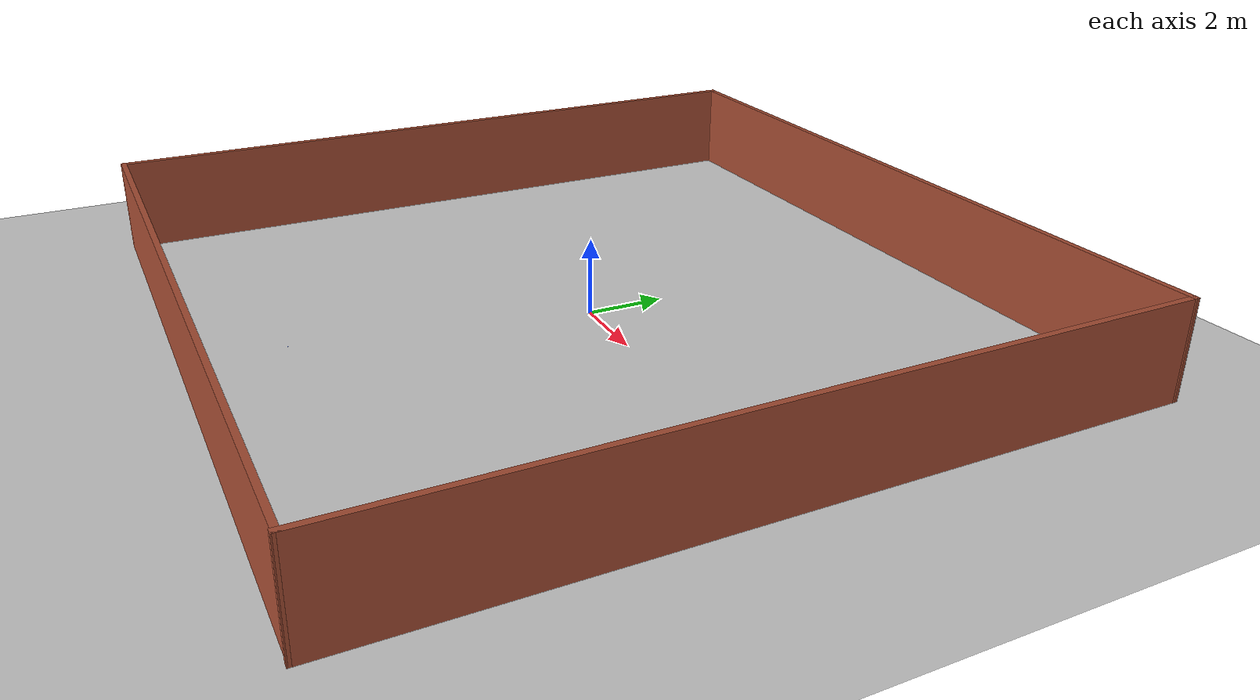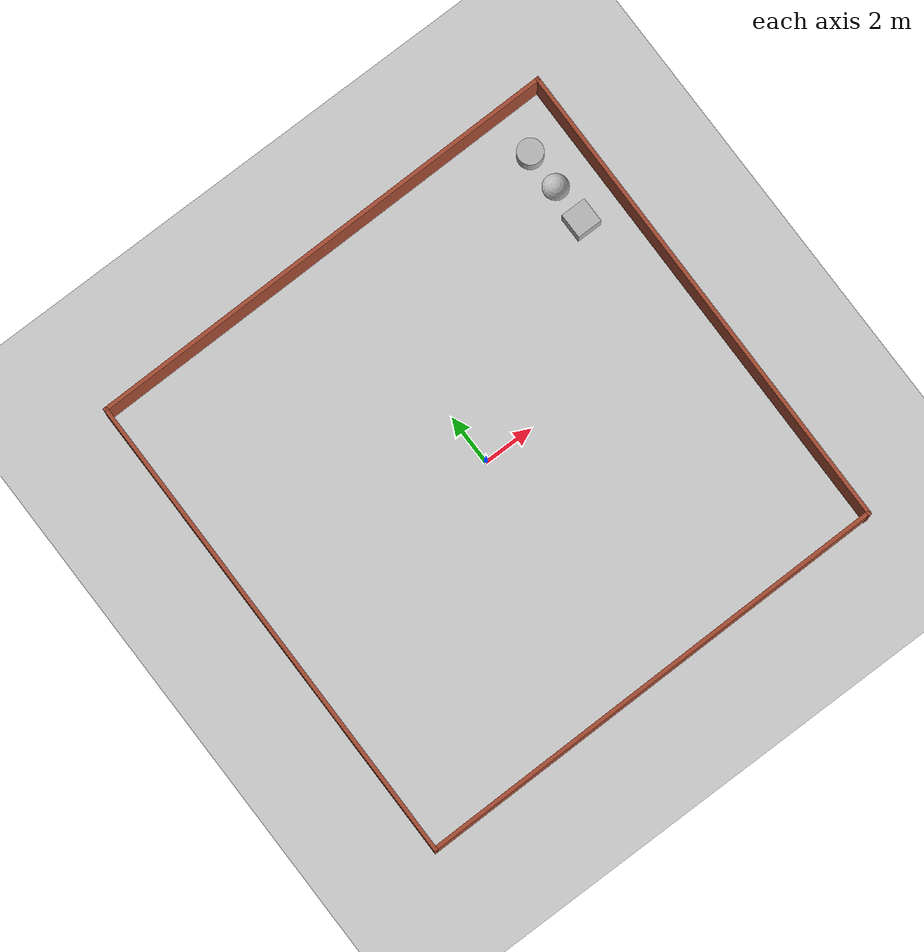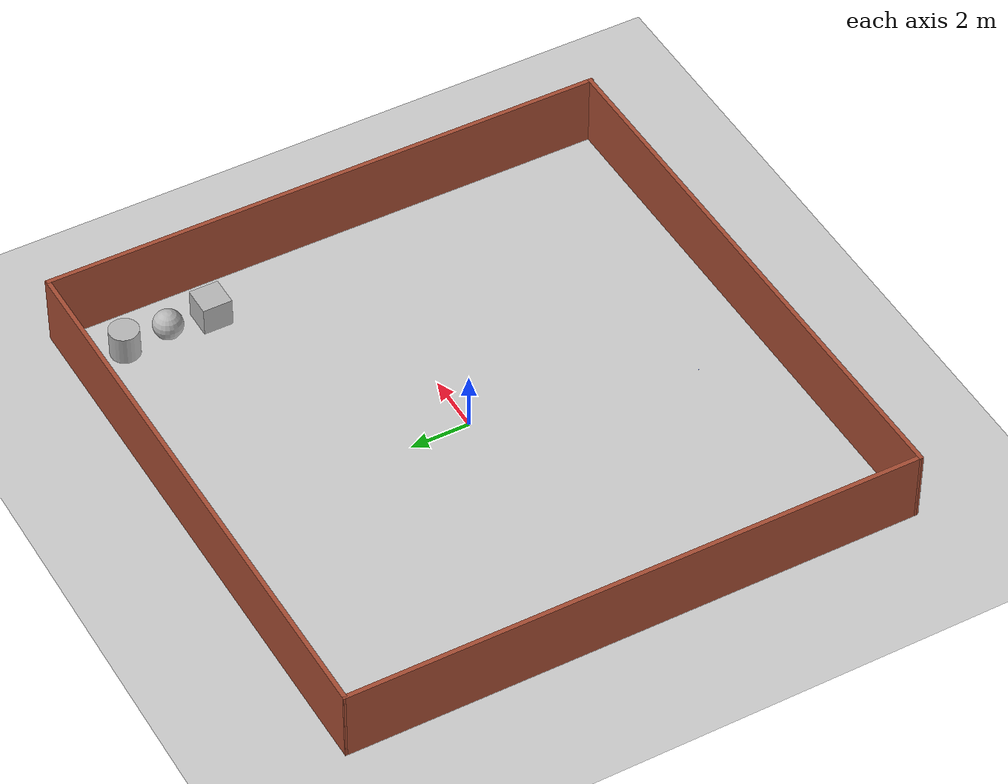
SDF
<sdf version="1.7">
 <world name="default">
  <light name="sun" type="directional">
   <pose>0 0 10 0 -0 0</pose>
   <diffuse>0.8 0.8 0.8 1</diffuse>
   <specular>0.2 0.2 0.2 1</specular>
   <attenuation>
    <range>1000</range>
    <constant>0.9</constant>
    <linear>0.01</linear>
    <quadratic>0.001</quadratic>
   </attenuation>
   <direction>-0.5 0.1 -0.9</direction>
   <spot><inner_angle>0</inner_angle><outer_angle>0</outer_angle><falloff>0</falloff></spot>
  </light>
  <model name="ground_plane">
   <static>1</static>
   <link name="link">
    <collision name="collision">
     <geometry><plane><normal>0 0 1</normal><size>100 100</size></plane></geometry>
     <surface>
      <contact><collide_bitmask>65535</collide_bitmask></contact>
      <friction><ode><mu>100</mu><mu2>50</mu2></ode></friction>
     </surface>
    </collision>
    <visual name="visual">
     <cast_shadows>0</cast_shadows>
     <geometry><plane><normal>0 0 1</normal><size>100 100</size></plane></geometry>
     <material>
      <script><uri>file://media/materials/scripts/gazebo.material</uri><name>Gazebo/Grey</name></script>
     </material>
    </visual>
   </link>
  </model>
  <gravity>0 0 -9.8</gravity>
  <magnetic_field>6e-06 2.3e-05 -4.2e-05</magnetic_field>
  <atmosphere type="adiabatic"/>
  <physics type="ode">
   <max_step_size>0.001</max_step_size>
   <real_time_factor>1</real_time_factor>
   <real_time_update_rate>1000</real_time_update_rate>
  </physics>
  <scene><ambient>0.4 0.4 0.4 1</ambient><background>0.7 0.7 0.7 1</background><shadows>1</shadows></scene>
  <spherical_coordinates>
   <surface_model>EARTH_WGS84</surface_model>
   <latitude_deg>0</latitude_deg>
   <longitude_deg>0</longitude_deg>
   <elevation>0</elevation>
   <heading_deg>0</heading_deg>
  </spherical_coordinates>
  <model name="four_wall">
   <pose>-0.112949 -0.176475 0 0 -0 0</pose>
   <link name="Wall_3">
    <collision name="Wall_3_Collision">
     <geometry><box><size>19.3912 0.15 2.5</size></box></geometry>
     <pose>0 0 1.25 0 -0 0</pose>
    </collision>
    <visual name="Wall_3_Visual">
     <pose>0 0 1.25 0 -0 0</pose>
     <geometry><box><size>19.3912 0.15 2.5</size></box></geometry>
     <material>
      <script><uri>file://media/materials/scripts/gazebo.material</uri><name>Gazebo/Bricks</name></script>
      <ambient>0.921569 0.807843 0.615686 1</ambient>
     </material>
     <meta><layer>0</layer></meta>
    </visual>
    <pose>-9.58582 -0.092522 0 0 -0 -1.5756</pose>
   </link>
   <link name="Wall_4">
    <collision name="Wall_4_Collision">
     <geometry><box><size>19.3225 0.15 2.5</size></box></geometry>
     <pose>0 0 1.25 0 -0 0</pose>
    </collision>
    <visual name="Wall_4_Visual">
     <pose>0 0 1.25 0 -0 0</pose>
     <geometry><box><size>19.3225 0.15 2.5</size></box></geometry>
     <material>
      <script><uri>file://media/materials/scripts/gazebo.material</uri><name>Gazebo/Bricks</name></script>
      <ambient>0.921569 0.807843 0.615686 1</ambient>
     </material>
     <meta><layer>0</layer></meta>
    </visual>
    <pose>-0.046262 -9.62051 0 0 -0 0.009652</pose>
   </link>
   <link name="Wall_5">
    <collision name="Wall_5_Collision">
     <geometry><box><size>19.3912 0.15 2.5</size></box></geometry>
     <pose>0 0 1.25 0 -0 0</pose>
    </collision>
    <visual name="Wall_5_Visual">
     <pose>0 0 1.25 0 -0 0</pose>
     <geometry><box><size>19.3912 0.15 2.5</size></box></geometry>
     <material>
      <script><uri>file://media/materials/scripts/gazebo.material</uri><name>Gazebo/Bricks</name></script>
      <ambient>1 1 1 1</ambient>
     </material>
     <meta><layer>0</layer></meta>
    </visual>
    <pose>9.58582 0.069392 0 0 -0 1.56599</pose>
   </link>
   <link name="Wall_6">
    <collision name="Wall_6_Collision">
     <geometry><box><size>19.3225 0.15 2.5</size></box></geometry>
     <pose>0 0 1.25 0 -0 0</pose>
    </collision>
    <visual name="Wall_6_Visual">
     <pose>0 0 1.25 0 -0 0</pose>
     <geometry><box><size>19.3225 0.15 2.5</size></box></geometry>
     <material>
      <script><uri>file://media/materials/scripts/gazebo.material</uri><name>Gazebo/Bricks</name></script>
      <ambient>1 1 1 1</ambient>
     </material>
     <meta><layer>0</layer></meta>
    </visual>
    <pose>0.046261 9.62051 0 0 -0 -3.13194</pose>
   </link>
   <static>1</static>
  </model>
  <model name="textured_shapes">
   <pose>7.90473 6.32976 0.5 0 -0 0</pose>
   <link name="box">
    <pose>0 -1.5 0 0 -0 0</pose>
    <collision name="collision"><geometry><box><size>1 1 1</size></box></geometry></collision>
    <visual name="visual">
     <geometry><box><size>1 1 1</size></box></geometry>
     <material>
      <script>
       <uri>model://textured_shapes/materials/scripts</uri>
       <uri>model://textured_shapes/materials/textures</uri>
       <name>TexturedShape/Squares</name>
      </script>
     </material>
    </visual>
    <inertial>
     <inertia><ixx>1</ixx><ixy>0</ixy><ixz>0</ixz><iyy>1</iyy><iyz>0</iyz><izz>1</izz></inertia>
     <mass>1</mass>
    </inertial>
   </link>
   <link name="sphere">
    <collision name="collision"><geometry><sphere><radius>0.5</radius></sphere></geometry></collision>
    <visual name="visual">
     <geometry><sphere><radius>0.5</radius></sphere></geometry>
     <material>
      <script>
       <uri>model://textured_shapes/materials/scripts</uri>
       <uri>model://textured_shapes/materials/textures</uri>
       <name>TexturedShape/Squares</name>
      </script>
     </material>
    </visual>
    <inertial>
     <inertia><ixx>1</ixx><ixy>0</ixy><ixz>0</ixz><iyy>1</iyy><iyz>0</iyz><izz>1</izz></inertia>
     <mass>1</mass>
    </inertial>
   </link>
   <link name="cylinder">
    <pose>0 1.5 0 0 -0 0</pose>
    <collision name="collision">
     <geometry><cylinder><radius>0.5</radius><length>1</length></cylinder></geometry>
    </collision>
    <visual name="visual">
     <geometry><cylinder><radius>0.5</radius><length>1</length></cylinder></geometry>
     <material>
      <script>
       <uri>model://textured_shapes/materials/scripts</uri>
       <uri>model://textured_shapes/materials/textures</uri>
       <name>TexturedShape/Squares</name>
      </script>
     </material>
    </visual>
    <inertial>
     <inertia><ixx>1</ixx><ixy>0</ixy><ixz>0</ixz><iyy>1</iyy><iyz>0</iyz><izz>1</izz></inertia>
     <mass>1</mass>
    </inertial>
   </link>
  </model>
  <model name="marble_1_5cm">
   <link name="link">
    <pose>0 0 0.0075 0 -0 0</pose>
    <inertial>
     <mass>0.0062</mass>
     <inertia>
      <ixx>1.395e-07</ixx>
      <ixy>0</ixy>
      <ixz>0</ixz>
      <iyy>1.395e-07</iyy>
      <iyz>0</iyz>
      <izz>1.395e-07</izz>
     </inertia>
    </inertial>
    <collision name="collision">
     <geometry><sphere><radius>0.0075</radius></sphere></geometry>
     <surface>
      <contact>
       <poissons_ratio>0.22</poissons_ratio>
       <elastic_modulus>5.1e+10</elastic_modulus>
       <ode><kp>100000</kp><kd>100</kd><max_vel>100</max_vel><min_depth>0.001</min_depth></ode>
      </contact>
      <friction>
       <torsional>
        <coefficient>1</coefficient>
        <use_patch_radius>0</use_patch_radius>
        <surface_radius>0.01</surface_radius>
       </torsional>
      </friction>
     </surface>
    </collision>
    <visual name="visual">
     <geometry><sphere><radius>0.0075</radius></sphere></geometry>
     <material>
      <script><uri>file://media/materials/scripts/gazebo.material</uri><name>Gazebo/Blue</name></script>
     </material>
    </visual>
    <velocity_decay><linear>0</linear><angular>0.005</angular></velocity_decay>
   </link>
   <pose>-1.41944 -7.35507 -0.000604 0 -0 0</pose>
  </model>
 </world>
</sdf>
